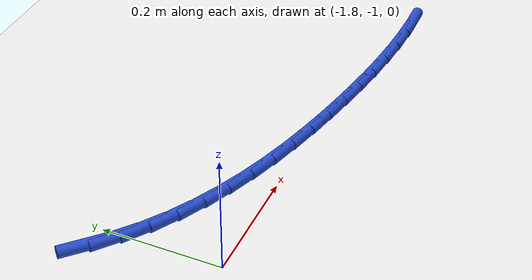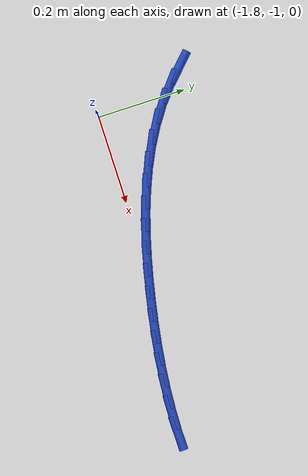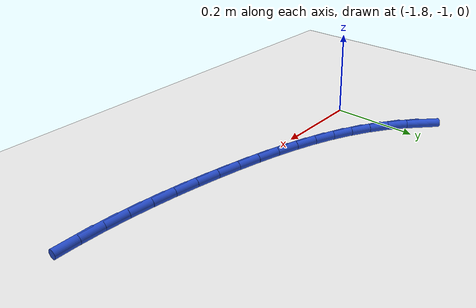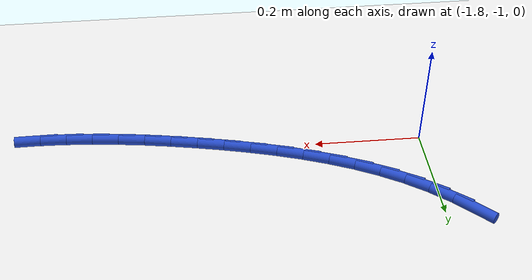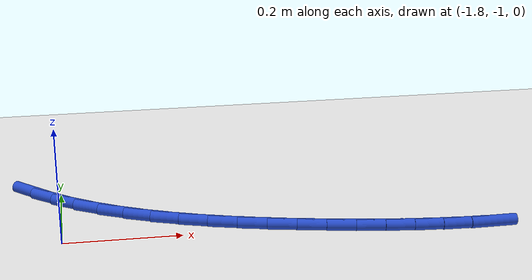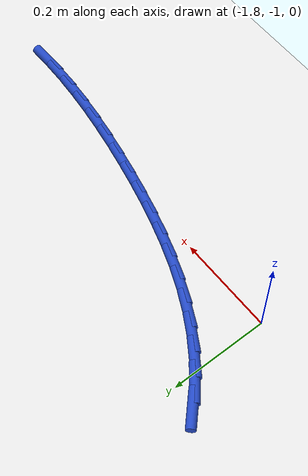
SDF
<sdf version="1.6">
 <world name="default">
  <model name="ground_plane">
   <static>1</static>
   <link name="link">
    <collision name="collision">
     <geometry><plane><normal>0 0 1</normal><size>100 100</size></plane></geometry>
     <surface><friction><ode><mu>100</mu><mu2>50</mu2></ode></friction></surface>
    </collision>
    <visual name="visual">
     <cast_shadows>0</cast_shadows>
     <geometry><plane><normal>0 0 1</normal><size>100 100</size></plane></geometry>
     <material>
      <script><uri>file://media/materials/scripts/gazebo.material</uri><name>Gazebo/WhiteGlow</name></script>
     </material>
    </visual>
   </link>
  </model>
  <model name="line">
   <link name="link_89">
    <pose>-1.8506206683425859 -0.7960030055925333 0.01 0 1.57 -0.7735441113350209</pose>
    <collision name="collision">
     <geometry><cylinder><radius>0.01</radius><length>0.08</length></cylinder></geometry>
    </collision>
    <visual name="visual">
     <material>
      <script><name>Gazebo/Blue</name><uri>file://media/materials/scripts/gazebo.material</uri></script>
     </material>
     <geometry><cylinder><radius>0.01</radius><length>0.08</length></cylinder></geometry>
    </visual>
   </link>
   <link name="link_90">
    <pose>-1.816743861049173 -0.8290860303697517 0.01 0 1.57 -0.6840664053408075</pose>
    <collision name="collision">
     <geometry><cylinder><radius>0.01</radius><length>0.08</length></cylinder></geometry>
    </collision>
    <visual name="visual">
     <material>
      <script><name>Gazebo/Blue</name><uri>file://media/materials/scripts/gazebo.material</uri></script>
     </material>
     <geometry><cylinder><radius>0.01</radius><length>0.08</length></cylinder></geometry>
    </visual>
   </link>
   <link name="link_91">
    <pose>-1.7800824437439535 -0.8589800860156115 0.01 0 1.57 -0.5985989325237971</pose>
    <collision name="collision">
     <geometry><cylinder><radius>0.01</radius><length>0.08</length></cylinder></geometry>
    </collision>
    <visual name="visual">
     <material>
      <script><name>Gazebo/Blue</name><uri>file://media/materials/scripts/gazebo.material</uri></script>
     </material>
     <geometry><cylinder><radius>0.01</radius><length>0.08</length></cylinder></geometry>
    </visual>
   </link>
   <link name="link_92">
    <pose>-1.7407992656282716 -0.8857744327108875 0.01 0 1.57 -0.521967756319206</pose>
    <collision name="collision">
     <geometry><cylinder><radius>0.01</radius><length>0.08</length></cylinder></geometry>
    </collision>
    <visual name="visual">
     <material>
      <script><name>Gazebo/Blue</name><uri>file://media/materials/scripts/gazebo.material</uri></script>
     </material>
     <geometry><cylinder><radius>0.01</radius><length>0.08</length></cylinder></geometry>
    </visual>
   </link>
   <link name="link_93">
    <pose>-1.6992027702589303 -0.909699805951354 0.01 0 1.57 -0.4541846992729573</pose>
    <collision name="collision">
     <geometry><cylinder><radius>0.01</radius><length>0.08</length></cylinder></geometry>
    </collision>
    <visual name="visual">
     <material>
      <script><name>Gazebo/Blue</name><uri>file://media/materials/scripts/gazebo.material</uri></script>
     </material>
     <geometry><cylinder><radius>0.01</radius><length>0.08</length></cylinder></geometry>
    </visual>
   </link>
   <link name="link_94">
    <pose>-1.6556015504861046 -0.9309870863024688 0.01 0 1.57 -0.3949072064487988</pose>
    <collision name="collision">
     <geometry><cylinder><radius>0.01</radius><length>0.08</length></cylinder></geometry>
    </collision>
    <visual name="visual">
     <material>
      <script><name>Gazebo/Blue</name><uri>file://media/materials/scripts/gazebo.material</uri></script>
     </material>
     <geometry><cylinder><radius>0.01</radius><length>0.08</length></cylinder></geometry>
    </visual>
   </link>
   <link name="link_95">
    <pose>-1.6103041991599711 -0.9498671543296905 0.01 0 1.57 -0.343604395478568</pose>
    <collision name="collision">
     <geometry><cylinder><radius>0.01</radius><length>0.08</length></cylinder></geometry>
    </collision>
    <visual name="visual">
     <material>
      <script><name>Gazebo/Blue</name><uri>file://media/materials/scripts/gazebo.material</uri></script>
     </material>
     <geometry><cylinder><radius>0.01</radius><length>0.08</length></cylinder></geometry>
    </visual>
   </link>
   <link name="link_96">
    <pose>-1.563619309130707 -0.9665708905984757 0.01 0 1.57 -0.2996789400222604</pose>
    <collision name="collision">
     <geometry><cylinder><radius>0.01</radius><length>0.08</length></cylinder></geometry>
    </collision>
    <visual name="visual">
     <material>
      <script><name>Gazebo/Blue</name><uri>file://media/materials/scripts/gazebo.material</uri></script>
     </material>
     <geometry><cylinder><radius>0.01</radius><length>0.08</length></cylinder></geometry>
    </visual>
   </link>
   <link name="link_97">
    <pose>-1.5158554732484883 -0.9813291756742831 0.01 0 1.57 -0.2625493069352089</pose>
    <collision name="collision">
     <geometry><cylinder><radius>0.01</radius><length>0.08</length></cylinder></geometry>
    </collision>
    <visual name="visual">
     <material>
      <script><name>Gazebo/Blue</name><uri>file://media/materials/scripts/gazebo.material</uri></script>
     </material>
     <geometry><cylinder><radius>0.01</radius><length>0.08</length></cylinder></geometry>
    </visual>
   </link>
   <link name="link_98">
    <pose>-1.4673212843634917 -0.9943728901225706 0.01 0 1.57 -0.23170103560851818</pose>
    <collision name="collision">
     <geometry><cylinder><radius>0.01</radius><length>0.08</length></cylinder></geometry>
    </collision>
    <visual name="visual">
     <material>
      <script><name>Gazebo/Blue</name><uri>file://media/materials/scripts/gazebo.material</uri></script>
     </material>
     <geometry><cylinder><radius>0.01</radius><length>0.08</length></cylinder></geometry>
    </visual>
   </link>
   <link name="link_99">
    <pose>-1.418325335325893 -1.005932914508796 0.01 0 1.57 -0.20668264813549997</pose>
    <collision name="collision">
     <geometry><cylinder><radius>0.01</radius><length>0.08</length></cylinder></geometry>
    </collision>
    <visual name="visual">
     <material>
      <script><name>Gazebo/Blue</name><uri>file://media/materials/scripts/gazebo.material</uri></script>
     </material>
     <geometry><cylinder><radius>0.01</radius><length>0.08</length></cylinder></geometry>
    </visual>
   </link>
   <link name="link_100">
    <pose>-1.3691750492569763 -1.0162385903870264 0.01 0 1.57 -0.18428467388019606</pose>
    <collision name="collision">
     <geometry><cylinder><radius>0.01</radius><length>0.08</length></cylinder></geometry>
    </collision>
    <visual name="visual">
     <material>
      <script><name>Gazebo/Blue</name><uri>file://media/materials/scripts/gazebo.material</uri></script>
     </material>
     <geometry><cylinder><radius>0.01</radius><length>0.08</length></cylinder></geometry>
    </visual>
   </link>
   <link name="link_101">
    <pose>-1.320079578573122 -1.0253899646214728 0.01 0 1.57 -0.1592827123369033</pose>
    <collision name="collision">
     <geometry><cylinder><radius>0.01</radius><length>0.08</length></cylinder></geometry>
    </collision>
    <visual name="visual">
     <material>
      <script><name>Gazebo/Blue</name><uri>file://media/materials/scripts/gazebo.material</uri></script>
     </material>
     <geometry><cylinder><radius>0.01</radius><length>0.08</length></cylinder></geometry>
    </visual>
   </link>
   <link name="link_102">
    <pose>-1.2710769419038346 -1.0332619234863345 0.01 0 1.57 -0.1310705102169935</pose>
    <collision name="collision">
     <geometry><cylinder><radius>0.01</radius><length>0.08</length></cylinder></geometry>
    </collision>
    <visual name="visual">
     <material>
      <script><name>Gazebo/Blue</name><uri>file://media/materials/scripts/gazebo.material</uri></script>
     </material>
     <geometry><cylinder><radius>0.01</radius><length>0.08</length></cylinder></geometry>
    </visual>
   </link>
   <link name="link_103">
    <pose>-1.2221879945475682 -1.0397067714745243 0.01 0 1.57 -0.09955901569634533</pose>
    <collision name="collision">
     <geometry><cylinder><radius>0.01</radius><length>0.08</length></cylinder></geometry>
    </collision>
    <visual name="visual">
     <material>
      <script><name>Gazebo/Blue</name><uri>file://media/materials/scripts/gazebo.material</uri></script>
     </material>
     <geometry><cylinder><radius>0.01</radius><length>0.08</length></cylinder></geometry>
    </visual>
   </link>
   <link name="link_104">
    <pose>-1.1734335918027778 -1.0445768130789563 0.01 0 1.57 -0.06467519314554429</pose>
    <collision name="collision">
     <geometry><cylinder><radius>0.01</radius><length>0.08</length></cylinder></geometry>
    </collision>
    <visual name="visual">
     <material>
      <script><name>Gazebo/Blue</name><uri>file://media/materials/scripts/gazebo.material</uri></script>
     </material>
     <geometry><cylinder><radius>0.01</radius><length>0.08</length></cylinder></geometry>
    </visual>
   </link>
   <link name="link_105">
    <pose>-1.1248345889679212 -1.0477243527925444 0.01 0 1.57 -0.026372856193966256</pose>
    <collision name="collision">
     <geometry><cylinder><radius>0.01</radius><length>0.08</length></cylinder></geometry>
    </collision>
    <visual name="visual">
     <material>
      <script><name>Gazebo/Blue</name><uri>file://media/materials/scripts/gazebo.material</uri></script>
     </material>
     <geometry><cylinder><radius>0.01</radius><length>0.08</length></cylinder></geometry>
    </visual>
   </link>
   <link name="link_106">
    <pose>-1.076411841341451 -1.049001695108201 0.01 0 1.57 0.01535474559266389</pose>
    <collision name="collision">
     <geometry><cylinder><radius>0.01</radius><length>0.08</length></cylinder></geometry>
    </collision>
    <visual name="visual">
     <material>
      <script><name>Gazebo/Blue</name><uri>file://media/materials/scripts/gazebo.material</uri></script>
     </material>
     <geometry><cylinder><radius>0.01</radius><length>0.08</length></cylinder></geometry>
    </visual>
   </link>
  </model>
 </world>
</sdf>
